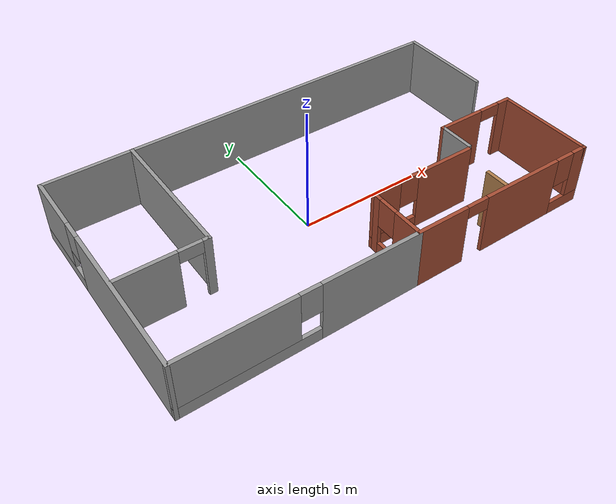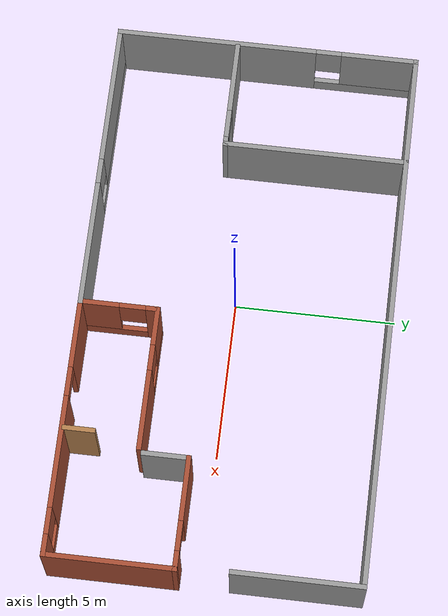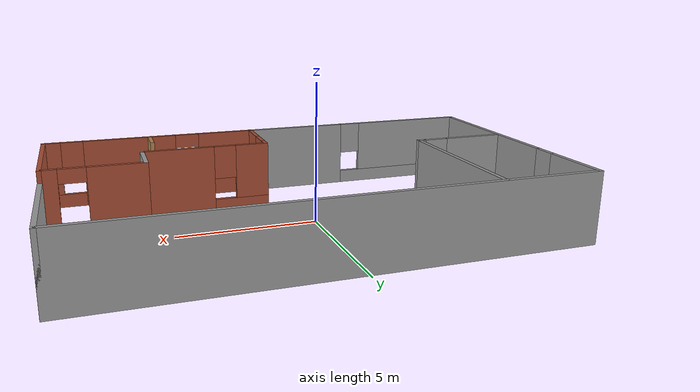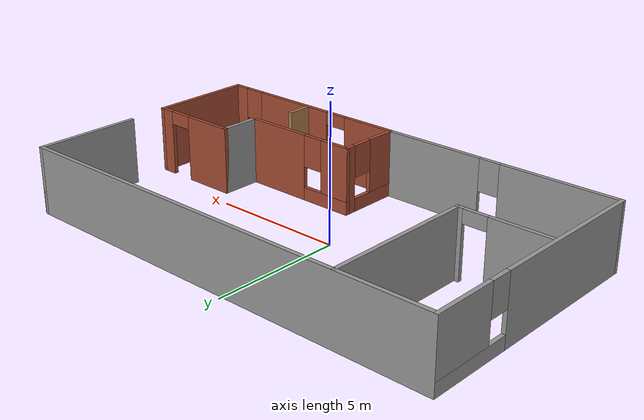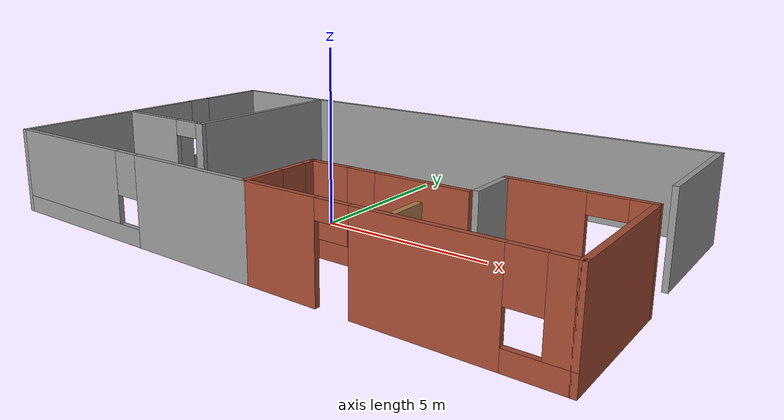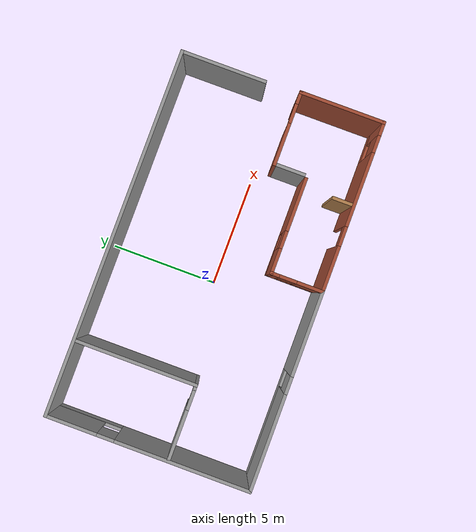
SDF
<?xml version='1.0'?>
<sdf version='1.7'>
  <model name='demo_world.world'>
    <pose>0.615 0.115 0 0 -0 0</pose>
    <link name='Wall_0'>
      <pose>2.8 -2.325 0 0 -0 3.14159</pose>
      <visual name='Wall_0_Visual_0'>
        <pose>-1.0075 0 1.25 0 -0 0</pose>
        <geometry>
          <box>
            <size>2.485 0.15 2.5</size>
          </box>
        </geometry>
        <material>
          <script>
            <uri>file://media/materials/scripts/gazebo.material</uri>
            <name>Gazebo/Bricks</name>
          </script>
          <ambient>1 1 1 1</ambient>
        </material>
        <meta>
          <layer>0</layer>
        </meta>
      </visual>
      <collision name='Wall_0_Collision_0'>
        <geometry>
          <box>
            <size>2.485 0.15 2.5</size>
          </box>
        </geometry>
        <pose>-1.0075 0 1.25 0 -0 0</pose>
      </collision>
      <visual name='Wall_0_Visual_1'>
        <pose>1.2425 0 0.25 0 -0 0</pose>
        <geometry>
          <box>
            <size>2.015 0.15 0.5</size>
          </box>
        </geometry>
        <material>
          <script>
            <uri>file://media/materials/scripts/gazebo.material</uri>
            <name>Gazebo/Bricks</name>
          </script>
          <ambient>1 1 1 1</ambient>
        </material>
        <meta>
          <layer>0</layer>
        </meta>
      </visual>
      <collision name='Wall_0_Collision_1'>
        <geometry>
          <box>
            <size>2.015 0.15 0.5</size>
          </box>
        </geometry>
        <pose>1.2425 0 0.25 0 -0 0</pose>
      </collision>
      <visual name='Wall_0_Visual_2'>
        <pose>1.6425 0 1.5 0 -0 0</pose>
        <geometry>
          <box>
            <size>1.215 0.15 2</size>
          </box>
        </geometry>
        <material>
          <script>
            <uri>file://media/materials/scripts/gazebo.material</uri>
            <name>Gazebo/Bricks</name>
          </script>
          <ambient>1 1 1 1</ambient>
        </material>
        <meta>
          <layer>0</layer>
        </meta>
      </visual>
      <collision name='Wall_0_Collision_2'>
        <geometry>
          <box>
            <size>1.215 0.15 2</size>
          </box>
        </geometry>
        <pose>1.6425 0 1.5 0 -0 0</pose>
      </collision>
      <visual name='Wall_0_Visual_3'>
        <pose>0.635 0 1.9 0 -0 0</pose>
        <geometry>
          <box>
            <size>0.8 0.15 1.2</size>
          </box>
        </geometry>
        <material>
          <script>
            <uri>file://media/materials/scripts/gazebo.material</uri>
            <name>Gazebo/Bricks</name>
          </script>
          <ambient>1 1 1 1</ambient>
        </material>
        <meta>
          <layer>0</layer>
        </meta>
      </visual>
      <collision name='Wall_0_Collision_3'>
        <geometry>
          <box>
            <size>0.8 0.15 1.2</size>
          </box>
        </geometry>
        <pose>0.635 0 1.9 0 -0 0</pose>
      </collision>
    </link>
    <link name='Wall_1'>
      <pose>0.625 -3.5 0 0 -0 -1.5708</pose>
      <visual name='Wall_1_Visual_0'>
        <pose>-1.02952 0 1.25 0 -0 0</pose>
        <geometry>
          <box>
            <size>0.440953 0.15 2.5</size>
          </box>
        </geometry>
        <material>
          <script>
            <uri>file://media/materials/scripts/gazebo.material</uri>
            <name>Gazebo/Bricks</name>
          </script>
          <ambient>1 1 1 1</ambient>
        </material>
        <meta>
          <layer>0</layer>
        </meta>
      </visual>
      <collision name='Wall_1_Collision_0'>
        <geometry>
          <box>
            <size>0.440953 0.15 2.5</size>
          </box>
        </geometry>
        <pose>-1.02952 0 1.25 0 -0 0</pose>
      </collision>
      <visual name='Wall_1_Visual_1'>
        <pose>0.220476 0 0.25 0 -0 0</pose>
        <geometry>
          <box>
            <size>2.05905 0.15 0.5</size>
          </box>
        </geometry>
        <material>
          <script>
            <uri>file://media/materials/scripts/gazebo.material</uri>
            <name>Gazebo/Bricks</name>
          </script>
          <ambient>1 1 1 1</ambient>
        </material>
        <meta>
          <layer>0</layer>
        </meta>
      </visual>
      <collision name='Wall_1_Collision_1'>
        <geometry>
          <box>
            <size>2.05905 0.15 0.5</size>
          </box>
        </geometry>
        <pose>0.220476 0 0.25 0 -0 0</pose>
      </collision>
      <visual name='Wall_1_Visual_2'>
        <pose>0.620476 0 1.5 0 -0 0</pose>
        <geometry>
          <box>
            <size>1.25905 0.15 2</size>
          </box>
        </geometry>
        <material>
          <script>
            <uri>file://media/materials/scripts/gazebo.material</uri>
            <name>Gazebo/Bricks</name>
          </script>
          <ambient>1 1 1 1</ambient>
        </material>
        <meta>
          <layer>0</layer>
        </meta>
      </visual>
      <collision name='Wall_1_Collision_2'>
        <geometry>
          <box>
            <size>1.25905 0.15 2</size>
          </box>
        </geometry>
        <pose>0.620476 0 1.5 0 -0 0</pose>
      </collision>
      <visual name='Wall_1_Visual_3'>
        <pose>-0.409047 0 1.9 0 -0 0</pose>
        <geometry>
          <box>
            <size>0.8 0.15 1.2</size>
          </box>
        </geometry>
        <material>
          <script>
            <uri>file://media/materials/scripts/gazebo.material</uri>
            <name>Gazebo/Bricks</name>
          </script>
          <ambient>1 1 1 1</ambient>
        </material>
        <meta>
          <layer>0</layer>
        </meta>
      </visual>
      <collision name='Wall_1_Collision_3'>
        <geometry>
          <box>
            <size>0.8 0.15 1.2</size>
          </box>
        </geometry>
        <pose>-0.409047 0 1.9 0 -0 0</pose>
      </collision>
    </link>
    <link name='Wall_10'>
      <pose>-3.925 -4.675 0 0 -0 3.14159</pose>
      <visual name='Wall_10_Visual_0'>
        <pose>-2.6429 0 1.25 0 -0 0</pose>
        <geometry>
          <box>
            <size>3.9642 0.15 2.5</size>
          </box>
        </geometry>
        <material>
          <script>
            <uri>file://media/materials/scripts/gazebo.material</uri>
            <name>Gazebo/Grey</name>
          </script>
          <ambient>1 1 1 1</ambient>
        </material>
        <meta>
          <layer>0</layer>
        </meta>
      </visual>
      <collision name='Wall_10_Collision_0'>
        <geometry>
          <box>
            <size>3.9642 0.15 2.5</size>
          </box>
        </geometry>
        <pose>-2.6429 0 1.25 0 -0 0</pose>
      </collision>
      <visual name='Wall_10_Visual_1'>
        <pose>1.9821 0 0.25 0 -0 0</pose>
        <geometry>
          <box>
            <size>5.2858 0.15 0.5</size>
          </box>
        </geometry>
        <material>
          <script>
            <uri>file://media/materials/scripts/gazebo.material</uri>
            <name>Gazebo/Grey</name>
          </script>
          <ambient>1 1 1 1</ambient>
        </material>
        <meta>
          <layer>0</layer>
        </meta>
      </visual>
      <collision name='Wall_10_Collision_1'>
        <geometry>
          <box>
            <size>5.2858 0.15 0.5</size>
          </box>
        </geometry>
        <pose>1.9821 0 0.25 0 -0 0</pose>
      </collision>
      <visual name='Wall_10_Visual_2'>
        <pose>2.3821 0 1.5 0 -0 0</pose>
        <geometry>
          <box>
            <size>4.4858 0.15 2</size>
          </box>
        </geometry>
        <material>
          <script>
            <uri>file://media/materials/scripts/gazebo.material</uri>
            <name>Gazebo/Grey</name>
          </script>
          <ambient>1 1 1 1</ambient>
        </material>
        <meta>
          <layer>0</layer>
        </meta>
      </visual>
      <collision name='Wall_10_Collision_2'>
        <geometry>
          <box>
            <size>4.4858 0.15 2</size>
          </box>
        </geometry>
        <pose>2.3821 0 1.5 0 -0 0</pose>
      </collision>
      <visual name='Wall_10_Visual_3'>
        <pose>-0.260797 0 1.9 0 -0 0</pose>
        <geometry>
          <box>
            <size>0.8 0.15 1.2</size>
          </box>
        </geometry>
        <material>
          <script>
            <uri>file://media/materials/scripts/gazebo.material</uri>
            <name>Gazebo/Grey</name>
          </script>
          <ambient>1 1 1 1</ambient>
        </material>
        <meta>
          <layer>0</layer>
        </meta>
      </visual>
      <collision name='Wall_10_Collision_3'>
        <geometry>
          <box>
            <size>0.8 0.15 1.2</size>
          </box>
        </geometry>
        <pose>-0.260797 0 1.9 0 -0 0</pose>
      </collision>
    </link>
    <link name='Wall_11'>
      <pose>-8.475 0 0 0 -0 1.5708</pose>
      <visual name='Wall_11_Visual_0'>
        <pose>-1.60773 0 1.25 0 -0 0</pose>
        <geometry>
          <box>
            <size>6.28455 0.15 2.5</size>
          </box>
        </geometry>
        <material>
          <script>
            <uri>file://media/materials/scripts/gazebo.material</uri>
            <name>Gazebo/Grey</name>
          </script>
          <ambient>1 1 1 1</ambient>
        </material>
        <meta>
          <layer>0</layer>
        </meta>
      </visual>
      <collision name='Wall_11_Collision_0'>
        <geometry>
          <box>
            <size>6.28455 0.15 2.5</size>
          </box>
        </geometry>
        <pose>-1.60773 0 1.25 0 -0 0</pose>
      </collision>
      <visual name='Wall_11_Visual_1'>
        <pose>3.14227 0 0.25 0 -0 0</pose>
        <geometry>
          <box>
            <size>3.21545 0.15 0.5</size>
          </box>
        </geometry>
        <material>
          <script>
            <uri>file://media/materials/scripts/gazebo.material</uri>
            <name>Gazebo/Grey</name>
          </script>
          <ambient>1 1 1 1</ambient>
        </material>
        <meta>
          <layer>0</layer>
        </meta>
      </visual>
      <collision name='Wall_11_Collision_1'>
        <geometry>
          <box>
            <size>3.21545 0.15 0.5</size>
          </box>
        </geometry>
        <pose>3.14227 0 0.25 0 -0 0</pose>
      </collision>
      <visual name='Wall_11_Visual_2'>
        <pose>3.54227 0 1.5 0 -0 0</pose>
        <geometry>
          <box>
            <size>2.41545 0.15 2</size>
          </box>
        </geometry>
        <material>
          <script>
            <uri>file://media/materials/scripts/gazebo.material</uri>
            <name>Gazebo/Grey</name>
          </script>
          <ambient>1 1 1 1</ambient>
        </material>
        <meta>
          <layer>0</layer>
        </meta>
      </visual>
      <collision name='Wall_11_Collision_2'>
        <geometry>
          <box>
            <size>2.41545 0.15 2</size>
          </box>
        </geometry>
        <pose>3.54227 0 1.5 0 -0 0</pose>
      </collision>
      <visual name='Wall_11_Visual_3'>
        <pose>1.93455 0 1.9 0 -0 0</pose>
        <geometry>
          <box>
            <size>0.8 0.15 1.2</size>
          </box>
        </geometry>
        <material>
          <script>
            <uri>file://media/materials/scripts/gazebo.material</uri>
            <name>Gazebo/Grey</name>
          </script>
          <ambient>1 1 1 1</ambient>
        </material>
        <meta>
          <layer>0</layer>
        </meta>
      </visual>
      <collision name='Wall_11_Collision_3'>
        <geometry>
          <box>
            <size>0.8 0.15 1.2</size>
          </box>
        </geometry>
        <pose>1.93455 0 1.9 0 -0 0</pose>
      </collision>
    </link>
    <link name='Wall_12'>
      <collision name='Wall_12_Collision'>
        <geometry>
          <box>
            <size>17 0.15 2.5</size>
          </box>
        </geometry>
        <pose>0 0 1.25 0 -0 0</pose>
      </collision>
      <visual name='Wall_12_Visual'>
        <pose>0 0 1.25 0 -0 0</pose>
        <geometry>
          <box>
            <size>17 0.15 2.5</size>
          </box>
        </geometry>
        <material>
          <script>
            <uri>file://media/materials/scripts/gazebo.material</uri>
            <name>Gazebo/Grey</name>
          </script>
          <ambient>1 1 1 1</ambient>
        </material>
        <meta>
          <layer>0</layer>
        </meta>
      </visual>
      <pose>-0.05 4.675 0 0 -0 0</pose>
    </link>
    <link name='Wall_13'>
      <collision name='Wall_13_Collision'>
        <geometry>
          <box>
            <size>4 0.15 2.5</size>
          </box>
        </geometry>
        <pose>0 0 1.25 0 -0 0</pose>
      </collision>
      <visual name='Wall_13_Visual'>
        <pose>0 0 1.25 0 -0 0</pose>
        <geometry>
          <box>
            <size>4 0.15 2.5</size>
          </box>
        </geometry>
        <material>
          <script>
            <uri>file://media/materials/scripts/gazebo.material</uri>
            <name>Gazebo/Grey</name>
          </script>
          <ambient>1 1 1 1</ambient>
        </material>
        <meta>
          <layer>0</layer>
        </meta>
      </visual>
      <pose>8.375 2.75 0 0 -0 -1.5708</pose>
    </link>
    <link name='Wall_15'>
      <collision name='Wall_15_Collision'>
        <geometry>
          <box>
            <size>5.75 0.15 2.5</size>
          </box>
        </geometry>
        <pose>0 0 1.25 0 -0 0</pose>
      </collision>
      <visual name='Wall_15_Visual'>
        <pose>0 0 1.25 0 -0 0</pose>
        <geometry>
          <box>
            <size>5.75 0.15 2.5</size>
          </box>
        </geometry>
        <material>
          <script>
            <uri>file://media/materials/scripts/gazebo.material</uri>
            <name>Gazebo/Grey</name>
          </script>
          <ambient>1 1 1 1</ambient>
        </material>
        <meta>
          <layer>0</layer>
        </meta>
      </visual>
      <pose>-5.02438 1.8589 0 0 -0 -1.5708</pose>
    </link>
    <link name='Wall_19'>
      <pose>-6.69938 -0.941102 0 0 -0 3.14159</pose>
      <visual name='Wall_19_Visual_0'>
        <pose>-1.5968 0 1.25 0 -0 0</pose>
        <geometry>
          <box>
            <size>0.306408 0.15 2.5</size>
          </box>
        </geometry>
        <material>
          <script>
            <uri>file://media/materials/scripts/gazebo.material</uri>
            <name>Gazebo/Grey</name>
          </script>
          <ambient>1 1 1 1</ambient>
        </material>
        <meta>
          <layer>0</layer>
        </meta>
      </visual>
      <collision name='Wall_19_Collision_0'>
        <geometry>
          <box>
            <size>0.306408 0.15 2.5</size>
          </box>
        </geometry>
        <pose>-1.5968 0 1.25 0 -0 0</pose>
      </collision>
      <visual name='Wall_19_Visual_1'>
        <pose>0.603204 0 1.25 0 -0 0</pose>
        <geometry>
          <box>
            <size>2.29359 0.15 2.5</size>
          </box>
        </geometry>
        <material>
          <script>
            <uri>file://media/materials/scripts/gazebo.material</uri>
            <name>Gazebo/Grey</name>
          </script>
          <ambient>1 1 1 1</ambient>
        </material>
        <meta>
          <layer>0</layer>
        </meta>
      </visual>
      <collision name='Wall_19_Collision_1'>
        <geometry>
          <box>
            <size>2.29359 0.15 2.5</size>
          </box>
        </geometry>
        <pose>0.603204 0 1.25 0 -0 0</pose>
      </collision>
      <visual name='Wall_19_Visual_2'>
        <pose>-0.993592 0 2.25 0 -0 0</pose>
        <geometry>
          <box>
            <size>0.9 0.15 0.5</size>
          </box>
        </geometry>
        <material>
          <script>
            <uri>file://media/materials/scripts/gazebo.material</uri>
            <name>Gazebo/Grey</name>
          </script>
          <ambient>1 1 1 1</ambient>
        </material>
        <meta>
          <layer>0</layer>
        </meta>
      </visual>
      <collision name='Wall_19_Collision_2'>
        <geometry>
          <box>
            <size>0.9 0.15 0.5</size>
          </box>
        </geometry>
        <pose>-0.993592 0 2.25 0 -0 0</pose>
      </collision>
    </link>
    <link name='Wall_3'>
      <pose>4.55 -4.675 0 0 -0 0</pose>
      <visual name='Wall_3_Visual_0'>
        <pose>-2.9075 0 1.25 0 -0 0</pose>
        <geometry>
          <box>
            <size>2.185 0.15 2.5</size>
          </box>
        </geometry>
        <material>
          <script>
            <uri>file://media/materials/scripts/gazebo.material</uri>
            <name>Gazebo/Bricks</name>
          </script>
          <ambient>1 1 1 1</ambient>
        </material>
        <meta>
          <layer>0</layer>
        </meta>
      </visual>
      <collision name='Wall_3_Collision_0'>
        <geometry>
          <box>
            <size>2.185 0.15 2.5</size>
          </box>
        </geometry>
        <pose>-2.9075 0 1.25 0 -0 0</pose>
      </collision>
      <visual name='Wall_3_Visual_1'>
        <pose>0.805 0 1.25 0 -0 0</pose>
        <geometry>
          <box>
            <size>3.44 0.15 2.5</size>
          </box>
        </geometry>
        <material>
          <script>
            <uri>file://media/materials/scripts/gazebo.material</uri>
            <name>Gazebo/Bricks</name>
          </script>
          <ambient>1 1 1 1</ambient>
        </material>
        <meta>
          <layer>0</layer>
        </meta>
      </visual>
      <collision name='Wall_3_Collision_1'>
        <geometry>
          <box>
            <size>3.44 0.15 2.5</size>
          </box>
        </geometry>
        <pose>0.805 0 1.25 0 -0 0</pose>
      </collision>
      <visual name='Wall_3_Visual_2'>
        <pose>3.2625 0 0.25 0 -0 0</pose>
        <geometry>
          <box>
            <size>1.475 0.15 0.5</size>
          </box>
        </geometry>
        <material>
          <script>
            <uri>file://media/materials/scripts/gazebo.material</uri>
            <name>Gazebo/Bricks</name>
          </script>
          <ambient>1 1 1 1</ambient>
        </material>
        <meta>
          <layer>0</layer>
        </meta>
      </visual>
      <collision name='Wall_3_Collision_2'>
        <geometry>
          <box>
            <size>1.475 0.15 0.5</size>
          </box>
        </geometry>
        <pose>3.2625 0 0.25 0 -0 0</pose>
      </collision>
      <visual name='Wall_3_Visual_3'>
        <pose>3.6625 0 1.5 0 -0 0</pose>
        <geometry>
          <box>
            <size>0.675 0.15 2</size>
          </box>
        </geometry>
        <material>
          <script>
            <uri>file://media/materials/scripts/gazebo.material</uri>
            <name>Gazebo/Bricks</name>
          </script>
          <ambient>1 1 1 1</ambient>
        </material>
        <meta>
          <layer>0</layer>
        </meta>
      </visual>
      <collision name='Wall_3_Collision_3'>
        <geometry>
          <box>
            <size>0.675 0.15 2</size>
          </box>
        </geometry>
        <pose>3.6625 0 1.5 0 -0 0</pose>
      </collision>
      <visual name='Wall_3_Visual_4'>
        <pose>2.925 0 1.9 0 -0 0</pose>
        <geometry>
          <box>
            <size>0.8 0.15 1.2</size>
          </box>
        </geometry>
        <material>
          <script>
            <uri>file://media/materials/scripts/gazebo.material</uri>
            <name>Gazebo/Bricks</name>
          </script>
          <ambient>1 1 1 1</ambient>
        </material>
        <meta>
          <layer>0</layer>
        </meta>
      </visual>
      <collision name='Wall_3_Collision_4'>
        <geometry>
          <box>
            <size>0.8 0.15 1.2</size>
          </box>
        </geometry>
        <pose>2.925 0 1.9 0 -0 0</pose>
      </collision>
      <visual name='Wall_3_Visual_5'>
        <pose>-1.365 0 2.25 0 -0 0</pose>
        <geometry>
          <box>
            <size>0.9 0.15 0.5</size>
          </box>
        </geometry>
        <material>
          <script>
            <uri>file://media/materials/scripts/gazebo.material</uri>
            <name>Gazebo/Bricks</name>
          </script>
          <ambient>1 1 1 1</ambient>
        </material>
        <meta>
          <layer>0</layer>
        </meta>
      </visual>
      <collision name='Wall_3_Collision_5'>
        <geometry>
          <box>
            <size>0.9 0.15 0.5</size>
          </box>
        </geometry>
        <pose>-1.365 0 2.25 0 -0 0</pose>
      </collision>
    </link>
    <link name='Wall_4'>
      <collision name='Wall_4_Collision'>
        <geometry>
          <box>
            <size>4 0.15 2.5</size>
          </box>
        </geometry>
        <pose>0 0 1.25 0 -0 0</pose>
      </collision>
      <visual name='Wall_4_Visual'>
        <pose>0 0 1.25 0 -0 0</pose>
        <geometry>
          <box>
            <size>4 0.15 2.5</size>
          </box>
        </geometry>
        <material>
          <script>
            <uri>file://media/materials/scripts/gazebo.material</uri>
            <name>Gazebo/Bricks</name>
          </script>
          <ambient>1 1 1 1</ambient>
        </material>
        <meta>
          <layer>0</layer>
        </meta>
      </visual>
      <pose>8.475 -2.75 0 0 -0 1.5708</pose>
    </link>
    <link name='Wall_5'>
      <pose>6.8 -0.825 0 0 -0 3.14159</pose>
      <visual name='Wall_5_Visual_0'>
        <pose>-1.44068 0 1.25 0 -0 0</pose>
        <geometry>
          <box>
            <size>0.618645 0.15 2.5</size>
          </box>
        </geometry>
        <material>
          <script>
            <uri>file://media/materials/scripts/gazebo.material</uri>
            <name>Gazebo/Bricks</name>
          </script>
          <ambient>1 1 1 1</ambient>
        </material>
        <meta>
          <layer>0</layer>
        </meta>
      </visual>
      <collision name='Wall_5_Collision_0'>
        <geometry>
          <box>
            <size>0.618645 0.15 2.5</size>
          </box>
        </geometry>
        <pose>-1.44068 0 1.25 0 -0 0</pose>
      </collision>
      <visual name='Wall_5_Visual_1'>
        <pose>0.759323 0 1.25 0 -0 0</pose>
        <geometry>
          <box>
            <size>1.98135 0.15 2.5</size>
          </box>
        </geometry>
        <material>
          <script>
            <uri>file://media/materials/scripts/gazebo.material</uri>
            <name>Gazebo/Bricks</name>
          </script>
          <ambient>1 1 1 1</ambient>
        </material>
        <meta>
          <layer>0</layer>
        </meta>
      </visual>
      <collision name='Wall_5_Collision_1'>
        <geometry>
          <box>
            <size>1.98135 0.15 2.5</size>
          </box>
        </geometry>
        <pose>0.759323 0 1.25 0 -0 0</pose>
      </collision>
      <visual name='Wall_5_Visual_2'>
        <pose>-0.681355 0 2.25 0 -0 0</pose>
        <geometry>
          <box>
            <size>0.9 0.15 0.5</size>
          </box>
        </geometry>
        <material>
          <script>
            <uri>file://media/materials/scripts/gazebo.material</uri>
            <name>Gazebo/Bricks</name>
          </script>
          <ambient>1 1 1 1</ambient>
        </material>
        <meta>
          <layer>0</layer>
        </meta>
      </visual>
      <collision name='Wall_5_Collision_2'>
        <geometry>
          <box>
            <size>0.9 0.15 0.5</size>
          </box>
        </geometry>
        <pose>-0.681355 0 2.25 0 -0 0</pose>
      </collision>
    </link>
    <link name='Wall_6'>
      <collision name='Wall_6_Collision'>
        <geometry>
          <box>
            <size>1.5 0.15 2.5</size>
          </box>
        </geometry>
        <pose>0 0 1.25 0 -0 0</pose>
      </collision>
      <visual name='Wall_6_Visual'>
        <pose>0 0 1.25 0 -0 0</pose>
        <geometry>
          <box>
            <size>1.5 0.15 2.5</size>
          </box>
        </geometry>
        <material>
          <script>
            <uri>file://media/materials/scripts/gazebo.material</uri>
            <name>Gazebo/Grey</name>
          </script>
          <ambient>1 1 1 1</ambient>
        </material>
        <meta>
          <layer>0</layer>
        </meta>
      </visual>
      <pose>5.125 -1.5 0 0 -0 -1.5708</pose>
    </link>
    <link name='Wall_8'>
      <collision name='Wall_8_Collision'>
        <geometry>
          <box>
            <size>1 0.15 2.5</size>
          </box>
        </geometry>
        <pose>0 0 1.25 0 -0 0</pose>
      </collision>
      <visual name='Wall_8_Visual'>
        <pose>0 0 1.25 0 -0 0</pose>
        <geometry>
          <box>
            <size>1 0.15 2.5</size>
          </box>
        </geometry>
        <material>
          <script>
            <uri>file://media/materials/scripts/gazebo.material</uri>
            <name>Gazebo/Wood</name>
          </script>
          <ambient>1 1 1 1</ambient>
        </material>
        <meta>
          <layer>0</layer>
        </meta>
      </visual>
      <pose>4.615 -4.17 0 0 -0 1.5708</pose>
    </link>
    <static>1</static>
  </model>
</sdf>
